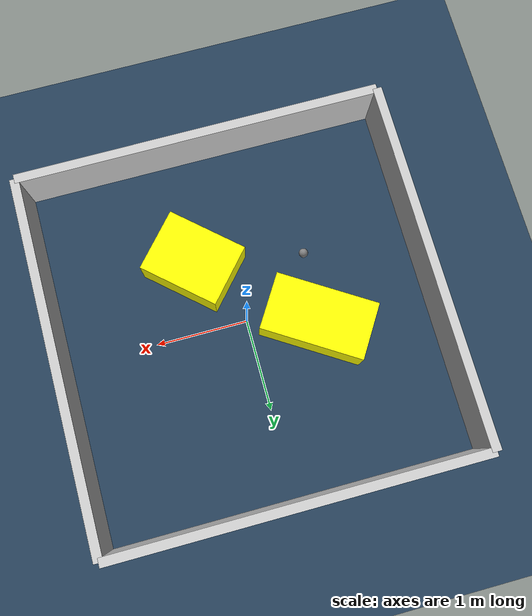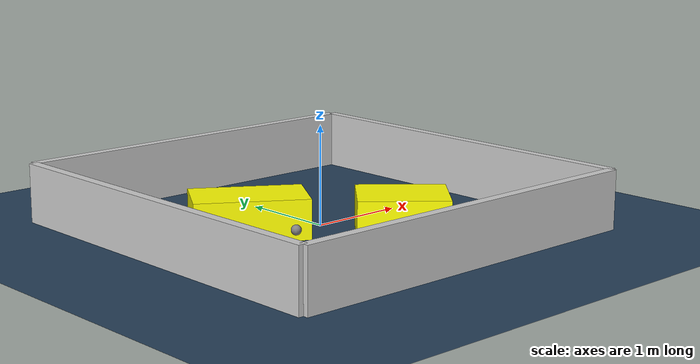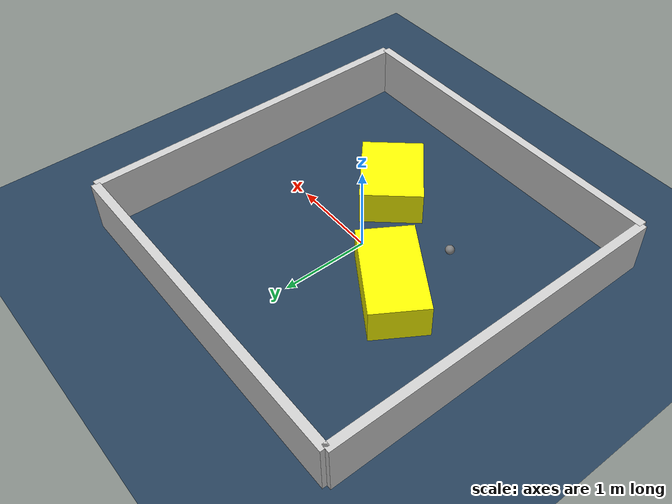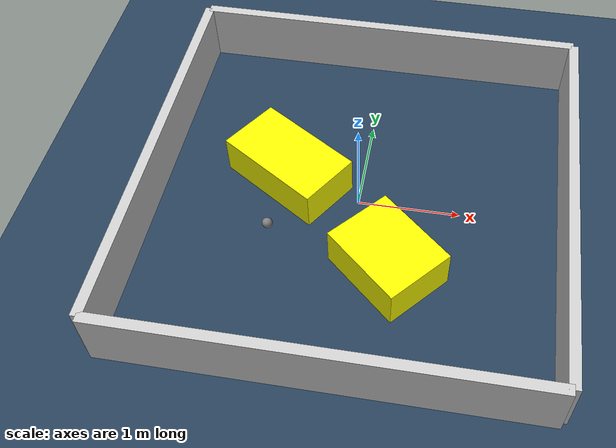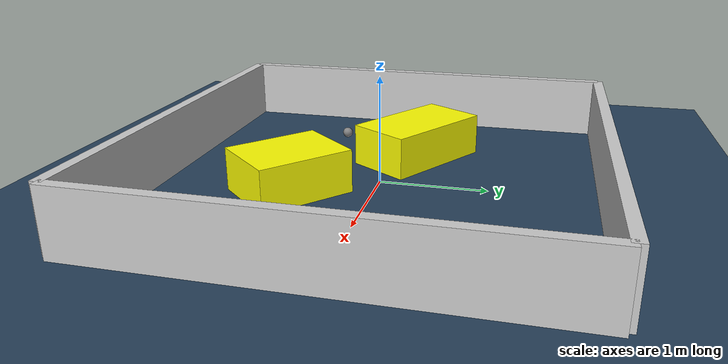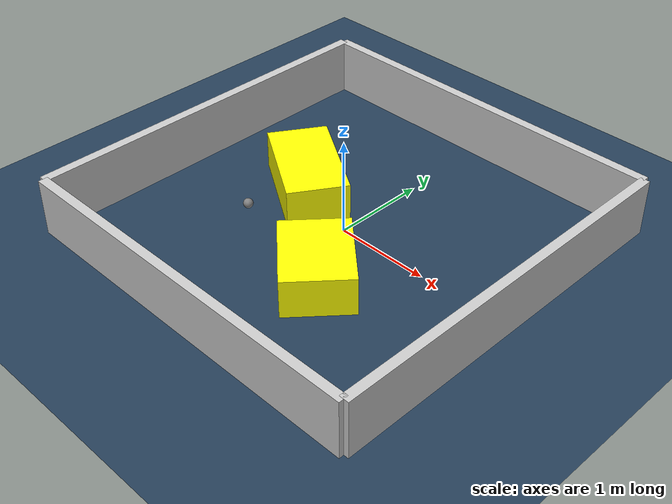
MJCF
<?xml version="1.0" ?>
<mujoco model="generated_environment">
  <option timestep="0.01" integrator="RK4" cone="elliptic"/>
  <default>
    <geom density="1"/>
  </default>
  <asset>
    <texture builtin="gradient" height="3072" rgb1="0.3 0.5 0.7" rgb2="0 0 0" type="skybox" width="512"/>
    <texture builtin="checker" height="300" mark="edge" markrgb="0.8 0.8 0.8" name="groundplane" rgb1="0.2 0.3 0.4" rgb2="0.1 0.2 0.3" type="2d" width="300"/>
    <material name="groundplane" reflectance="0.2" texrepeat="5 5" texture="groundplane" texuniform="true"/>
    <material name="robot" rgba="0.0 1.0 0.0 1"/>
  </asset>
  <worldbody>
    <light dir="0 0 -1" directional="true" pos="0 0 1.5"/>
    <geom condim="4" friction="1.0 0.005 0.001" material="groundplane" name="floor" size="0 0 0.05" type="plane"/>
    <body name="walls">
      <geom name="wall_1" condim="4" pos="-2.0 0.0 0.3" rgba="0.800000011920929 0.800000011920929 0.800000011920929 1.0" size="0.05 2.0 0.3" type="box"/>
      <geom name="wall_2" condim="4" pos="2.0 0.0 0.3" rgba="0.800000011920929 0.800000011920929 0.800000011920929 1.0" size="0.05 2.0 0.3" type="box"/>
      <geom name="wall_3" condim="4" pos="0.0 -2.0 0.3" rgba="0.800000011920929 0.800000011920929 0.800000011920929 1.0" size="2.0 0.05 0.3" type="box"/>
      <geom name="wall_4" condim="4" pos="0.0 2.0 0.3" rgba="0.800000011920929 0.800000011920929 0.800000011920929 1.0" size="2.0 0.05 0.3" type="box"/>
    </body>
    <body name="robot">
      <joint name="joint_x" type="slide" pos="0 0 0" axis="1 0 0"/>
      <joint name="joint_y" type="slide" pos="0 0 0" axis="0 1 0"/>
      <geom name="robot" type="sphere" pos="-0.7837680095500704 -0.5336076686321838 0.2" size="0.05" mass="5." friction="1.0 0.005 0.0001" condim="4"/>
      <site name="sensor_ball"/>
    </body>
    <body name="obstacle_1_movable">
      <geom name="obstacle_1_movable" condim="4" pos="-0.7324167876842145 0.2129479253290456 0.2" euler="0 0 237.62079389153186" friction="1.0 0.005 0.001" rgba="1 1 0 1" size="0.3143221636719395 0.5620085618668071 0.2" type="box" mass="0.1"/>
      <joint type="free"/>
    </body>
    <body name="obstacle_2_movable">
      <geom name="obstacle_2_movable" condim="4" pos="0.39342856605617116 -0.7426715194040523 0.2" euler="0 0 48.4812981979424" friction="1.0 0.005 0.001" rgba="1 1 0 1" size="0.34786917267994283 0.4468535494247392 0.2" type="box" mass="0.1"/>
      <joint type="free"/>
    </body>
  </worldbody>
  <actuator>
    <motor name="actuator_x" joint="joint_x" gear="1" ctrlrange="-1 1"/>
    <motor name="actuator_y" joint="joint_y" gear="1" ctrlrange="-1 1"/>
  </actuator>
</mujoco>
